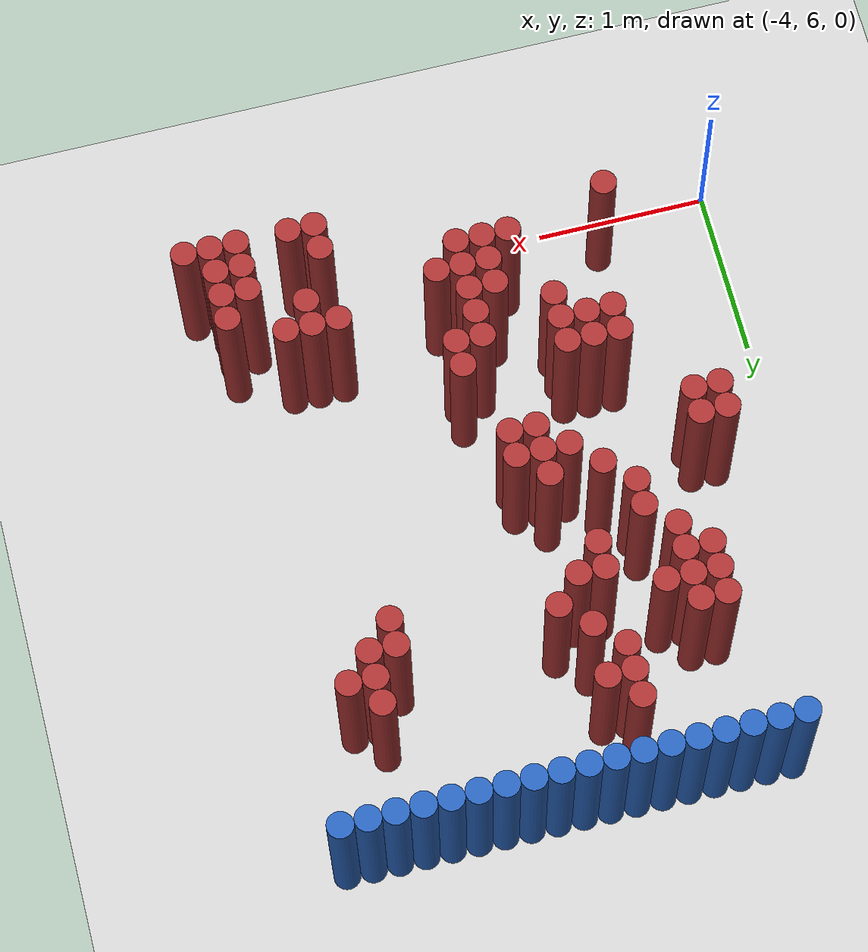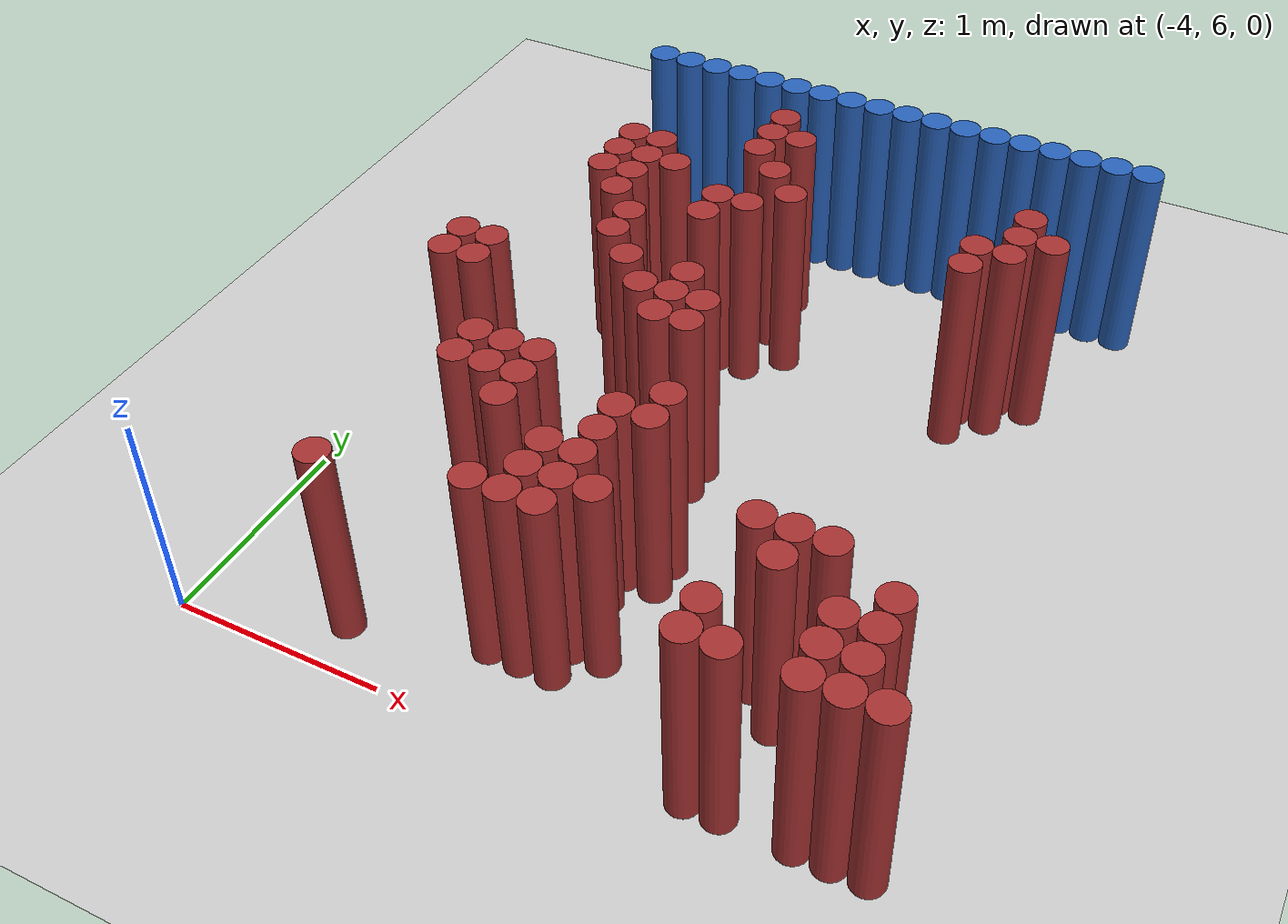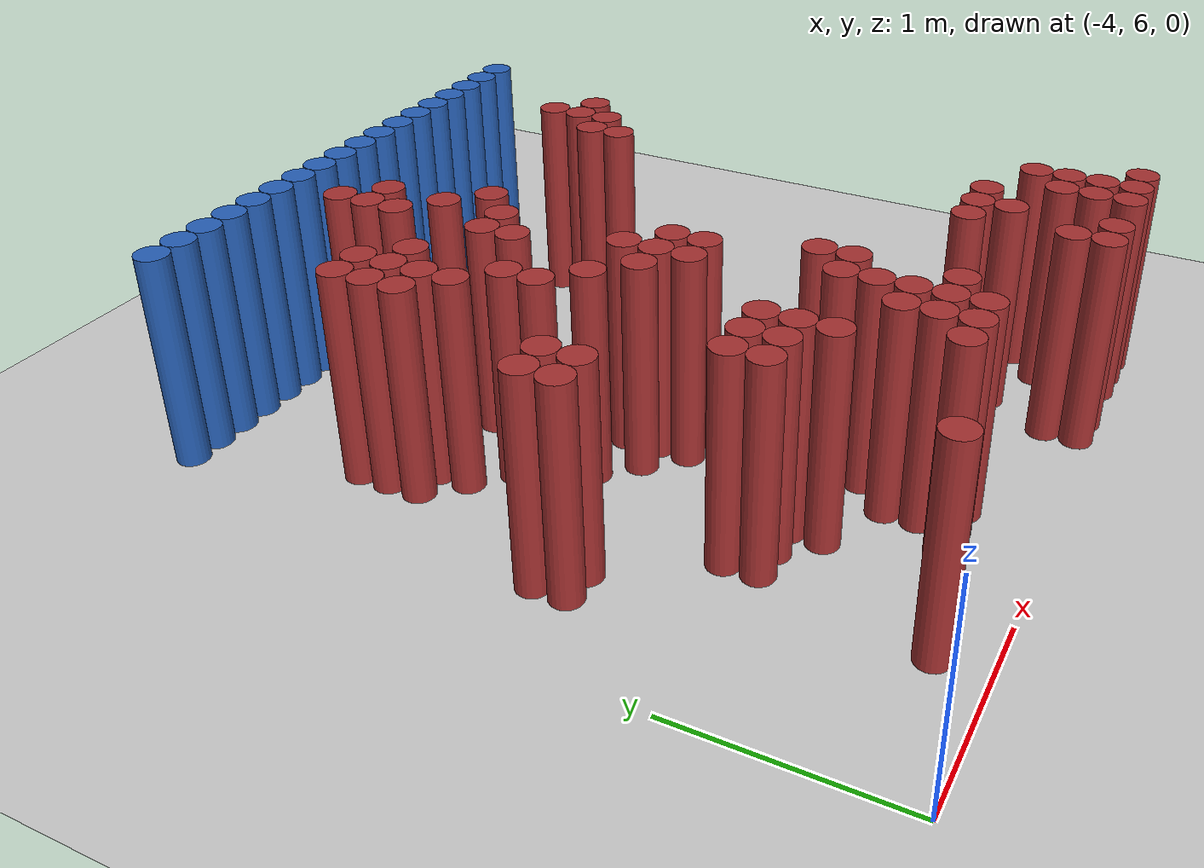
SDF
<sdf version="1.6">
 <world name="barn_world">
  <model name="ground_plane">
   <static>1</static>
   <link name="link">
    <collision name="collision">
     <geometry><plane><normal>0 0 1</normal><size>100 100</size></plane></geometry>
    </collision>
    <visual name="visual">
     <geometry><plane><normal>0 0 1</normal><size>100 100</size></plane></geometry>
     <material>
      <script><uri>file://media/materials/scripts/gazebo.material</uri><name>Gazebo/Grey</name></script>
     </material>
    </visual>
   </link>
  </model>
  <model name="unit_cylinder_195">
   <static>1</static>
   <pose>-3.6000 7.5750 0.5 0 0 0</pose>
   <link name="link">
    <collision name="collision">
     <geometry><cylinder><radius>0.075</radius><length>1</length></cylinder></geometry>
    </collision>
    <visual name="visual">
     <geometry><cylinder><radius>0.075</radius><length>1</length></cylinder></geometry>
     <material><ambient>0.648 0.192 0.192 1</ambient><diffuse>0.648 0.192 0.192 1</diffuse></material>
    </visual>
   </link>
  </model>
  <model name="unit_cylinder_196">
   <static>1</static>
   <pose>-3.6000 7.7250 0.5 0 0 0</pose>
   <link name="link">
    <collision name="collision">
     <geometry><cylinder><radius>0.075</radius><length>1</length></cylinder></geometry>
    </collision>
    <visual name="visual">
     <geometry><cylinder><radius>0.075</radius><length>1</length></cylinder></geometry>
     <material><ambient>0.648 0.192 0.192 1</ambient><diffuse>0.648 0.192 0.192 1</diffuse></material>
    </visual>
   </link>
  </model>
  <model name="unit_cylinder_198">
   <static>1</static>
   <pose>-3.4500 7.5750 0.5 0 0 0</pose>
   <link name="link">
    <collision name="collision">
     <geometry><cylinder><radius>0.075</radius><length>1</length></cylinder></geometry>
    </collision>
    <visual name="visual">
     <geometry><cylinder><radius>0.075</radius><length>1</length></cylinder></geometry>
     <material><ambient>0.648 0.192 0.192 1</ambient><diffuse>0.648 0.192 0.192 1</diffuse></material>
    </visual>
   </link>
  </model>
  <model name="unit_cylinder_199">
   <static>1</static>
   <pose>-3.4500 7.7250 0.5 0 0 0</pose>
   <link name="link">
    <collision name="collision">
     <geometry><cylinder><radius>0.075</radius><length>1</length></cylinder></geometry>
    </collision>
    <visual name="visual">
     <geometry><cylinder><radius>0.075</radius><length>1</length></cylinder></geometry>
     <material><ambient>0.648 0.192 0.192 1</ambient><diffuse>0.648 0.192 0.192 1</diffuse></material>
    </visual>
   </link>
  </model>
  <model name="unit_cylinder_202">
   <static>1</static>
   <pose>-3.3000 6.2250 0.5 0 0 0</pose>
   <link name="link">
    <collision name="collision">
     <geometry><cylinder><radius>0.075</radius><length>1</length></cylinder></geometry>
    </collision>
    <visual name="visual">
     <geometry><cylinder><radius>0.075</radius><length>1</length></cylinder></geometry>
     <material><ambient>0.648 0.192 0.192 1</ambient><diffuse>0.648 0.192 0.192 1</diffuse></material>
    </visual>
   </link>
  </model>
  <model name="unit_cylinder_203">
   <static>1</static>
   <pose>-3.3000 8.4750 0.5 0 0 0</pose>
   <link name="link">
    <collision name="collision">
     <geometry><cylinder><radius>0.075</radius><length>1</length></cylinder></geometry>
    </collision>
    <visual name="visual">
     <geometry><cylinder><radius>0.075</radius><length>1</length></cylinder></geometry>
     <material><ambient>0.648 0.192 0.192 1</ambient><diffuse>0.648 0.192 0.192 1</diffuse></material>
    </visual>
   </link>
  </model>
  <model name="unit_cylinder_204">
   <static>1</static>
   <pose>-3.3000 8.6250 0.5 0 0 0</pose>
   <link name="link">
    <collision name="collision">
     <geometry><cylinder><radius>0.075</radius><length>1</length></cylinder></geometry>
    </collision>
    <visual name="visual">
     <geometry><cylinder><radius>0.075</radius><length>1</length></cylinder></geometry>
     <material><ambient>0.648 0.192 0.192 1</ambient><diffuse>0.648 0.192 0.192 1</diffuse></material>
    </visual>
   </link>
  </model>
  <model name="unit_cylinder_205">
   <static>1</static>
   <pose>-3.3000 8.7750 0.5 0 0 0</pose>
   <link name="link">
    <collision name="collision">
     <geometry><cylinder><radius>0.075</radius><length>1</length></cylinder></geometry>
    </collision>
    <visual name="visual">
     <geometry><cylinder><radius>0.075</radius><length>1</length></cylinder></geometry>
     <material><ambient>0.648 0.192 0.192 1</ambient><diffuse>0.648 0.192 0.192 1</diffuse></material>
    </visual>
   </link>
  </model>
  <model name="unit_cylinder_208">
   <static>1</static>
   <pose>-3.1500 6.9750 0.5 0 0 0</pose>
   <link name="link">
    <collision name="collision">
     <geometry><cylinder><radius>0.075</radius><length>1</length></cylinder></geometry>
    </collision>
    <visual name="visual">
     <geometry><cylinder><radius>0.075</radius><length>1</length></cylinder></geometry>
     <material><ambient>0.648 0.192 0.192 1</ambient><diffuse>0.648 0.192 0.192 1</diffuse></material>
    </visual>
   </link>
  </model>
  <model name="unit_cylinder_209">
   <static>1</static>
   <pose>-3.1500 7.1250 0.5 0 0 0</pose>
   <link name="link">
    <collision name="collision">
     <geometry><cylinder><radius>0.075</radius><length>1</length></cylinder></geometry>
    </collision>
    <visual name="visual">
     <geometry><cylinder><radius>0.075</radius><length>1</length></cylinder></geometry>
     <material><ambient>0.648 0.192 0.192 1</ambient><diffuse>0.648 0.192 0.192 1</diffuse></material>
    </visual>
   </link>
  </model>
  <model name="unit_cylinder_210">
   <static>1</static>
   <pose>-3.1500 8.3250 0.5 0 0 0</pose>
   <link name="link">
    <collision name="collision">
     <geometry><cylinder><radius>0.075</radius><length>1</length></cylinder></geometry>
    </collision>
    <visual name="visual">
     <geometry><cylinder><radius>0.075</radius><length>1</length></cylinder></geometry>
     <material><ambient>0.648 0.192 0.192 1</ambient><diffuse>0.648 0.192 0.192 1</diffuse></material>
    </visual>
   </link>
  </model>
  <model name="unit_cylinder_211">
   <static>1</static>
   <pose>-3.1500 8.4750 0.5 0 0 0</pose>
   <link name="link">
    <collision name="collision">
     <geometry><cylinder><radius>0.075</radius><length>1</length></cylinder></geometry>
    </collision>
    <visual name="visual">
     <geometry><cylinder><radius>0.075</radius><length>1</length></cylinder></geometry>
     <material><ambient>0.648 0.192 0.192 1</ambient><diffuse>0.648 0.192 0.192 1</diffuse></material>
    </visual>
   </link>
  </model>
  <model name="unit_cylinder_212">
   <static>1</static>
   <pose>-3.1500 8.6250 0.5 0 0 0</pose>
   <link name="link">
    <collision name="collision">
     <geometry><cylinder><radius>0.075</radius><length>1</length></cylinder></geometry>
    </collision>
    <visual name="visual">
     <geometry><cylinder><radius>0.075</radius><length>1</length></cylinder></geometry>
     <material><ambient>0.648 0.192 0.192 1</ambient><diffuse>0.648 0.192 0.192 1</diffuse></material>
    </visual>
   </link>
  </model>
  <model name="unit_cylinder_213">
   <static>1</static>
   <pose>-3.1500 8.7750 0.5 0 0 0</pose>
   <link name="link">
    <collision name="collision">
     <geometry><cylinder><radius>0.075</radius><length>1</length></cylinder></geometry>
    </collision>
    <visual name="visual">
     <geometry><cylinder><radius>0.075</radius><length>1</length></cylinder></geometry>
     <material><ambient>0.648 0.192 0.192 1</ambient><diffuse>0.648 0.192 0.192 1</diffuse></material>
    </visual>
   </link>
  </model>
  <model name="unit_cylinder_215">
   <static>1</static>
   <pose>-3.0000 6.9750 0.5 0 0 0</pose>
   <link name="link">
    <collision name="collision">
     <geometry><cylinder><radius>0.075</radius><length>1</length></cylinder></geometry>
    </collision>
    <visual name="visual">
     <geometry><cylinder><radius>0.075</radius><length>1</length></cylinder></geometry>
     <material><ambient>0.648 0.192 0.192 1</ambient><diffuse>0.648 0.192 0.192 1</diffuse></material>
    </visual>
   </link>
  </model>
  <model name="unit_cylinder_216">
   <static>1</static>
   <pose>-3.0000 7.1250 0.5 0 0 0</pose>
   <link name="link">
    <collision name="collision">
     <geometry><cylinder><radius>0.075</radius><length>1</length></cylinder></geometry>
    </collision>
    <visual name="visual">
     <geometry><cylinder><radius>0.075</radius><length>1</length></cylinder></geometry>
     <material><ambient>0.648 0.192 0.192 1</ambient><diffuse>0.648 0.192 0.192 1</diffuse></material>
    </visual>
   </link>
  </model>
  <model name="unit_cylinder_217">
   <static>1</static>
   <pose>-3.0000 8.0250 0.5 0 0 0</pose>
   <link name="link">
    <collision name="collision">
     <geometry><cylinder><radius>0.075</radius><length>1</length></cylinder></geometry>
    </collision>
    <visual name="visual">
     <geometry><cylinder><radius>0.075</radius><length>1</length></cylinder></geometry>
     <material><ambient>0.648 0.192 0.192 1</ambient><diffuse>0.648 0.192 0.192 1</diffuse></material>
    </visual>
   </link>
  </model>
  <model name="unit_cylinder_218">
   <static>1</static>
   <pose>-3.0000 8.1750 0.5 0 0 0</pose>
   <link name="link">
    <collision name="collision">
     <geometry><cylinder><radius>0.075</radius><length>1</length></cylinder></geometry>
    </collision>
    <visual name="visual">
     <geometry><cylinder><radius>0.075</radius><length>1</length></cylinder></geometry>
     <material><ambient>0.648 0.192 0.192 1</ambient><diffuse>0.648 0.192 0.192 1</diffuse></material>
    </visual>
   </link>
  </model>
  <model name="unit_cylinder_219">
   <static>1</static>
   <pose>-3.0000 8.6250 0.5 0 0 0</pose>
   <link name="link">
    <collision name="collision">
     <geometry><cylinder><radius>0.075</radius><length>1</length></cylinder></geometry>
    </collision>
    <visual name="visual">
     <geometry><cylinder><radius>0.075</radius><length>1</length></cylinder></geometry>
     <material><ambient>0.648 0.192 0.192 1</ambient><diffuse>0.648 0.192 0.192 1</diffuse></material>
    </visual>
   </link>
  </model>
  <model name="unit_cylinder_222">
   <static>1</static>
   <pose>-2.8500 6.8250 0.5 0 0 0</pose>
   <link name="link">
    <collision name="collision">
     <geometry><cylinder><radius>0.075</radius><length>1</length></cylinder></geometry>
    </collision>
    <visual name="visual">
     <geometry><cylinder><radius>0.075</radius><length>1</length></cylinder></geometry>
     <material><ambient>0.648 0.192 0.192 1</ambient><diffuse>0.648 0.192 0.192 1</diffuse></material>
    </visual>
   </link>
  </model>
  <model name="unit_cylinder_223">
   <static>1</static>
   <pose>-2.8500 6.9750 0.5 0 0 0</pose>
   <link name="link">
    <collision name="collision">
     <geometry><cylinder><radius>0.075</radius><length>1</length></cylinder></geometry>
    </collision>
    <visual name="visual">
     <geometry><cylinder><radius>0.075</radius><length>1</length></cylinder></geometry>
     <material><ambient>0.648 0.192 0.192 1</ambient><diffuse>0.648 0.192 0.192 1</diffuse></material>
    </visual>
   </link>
  </model>
  <model name="unit_cylinder_224">
   <static>1</static>
   <pose>-2.8500 7.1250 0.5 0 0 0</pose>
   <link name="link">
    <collision name="collision">
     <geometry><cylinder><radius>0.075</radius><length>1</length></cylinder></geometry>
    </collision>
    <visual name="visual">
     <geometry><cylinder><radius>0.075</radius><length>1</length></cylinder></geometry>
     <material><ambient>0.648 0.192 0.192 1</ambient><diffuse>0.648 0.192 0.192 1</diffuse></material>
    </visual>
   </link>
  </model>
  <model name="unit_cylinder_225">
   <static>1</static>
   <pose>-2.8500 7.8750 0.5 0 0 0</pose>
   <link name="link">
    <collision name="collision">
     <geometry><cylinder><radius>0.075</radius><length>1</length></cylinder></geometry>
    </collision>
    <visual name="visual">
     <geometry><cylinder><radius>0.075</radius><length>1</length></cylinder></geometry>
     <material><ambient>0.648 0.192 0.192 1</ambient><diffuse>0.648 0.192 0.192 1</diffuse></material>
    </visual>
   </link>
  </model>
  <model name="unit_cylinder_227">
   <static>1</static>
   <pose>-2.7000 6.3750 0.5 0 0 0</pose>
   <link name="link">
    <collision name="collision">
     <geometry><cylinder><radius>0.075</radius><length>1</length></cylinder></geometry>
    </collision>
    <visual name="visual">
     <geometry><cylinder><radius>0.075</radius><length>1</length></cylinder></geometry>
     <material><ambient>0.648 0.192 0.192 1</ambient><diffuse>0.648 0.192 0.192 1</diffuse></material>
    </visual>
   </link>
  </model>
  <model name="unit_cylinder_228">
   <static>1</static>
   <pose>-2.7000 7.7250 0.5 0 0 0</pose>
   <link name="link">
    <collision name="collision">
     <geometry><cylinder><radius>0.075</radius><length>1</length></cylinder></geometry>
    </collision>
    <visual name="visual">
     <geometry><cylinder><radius>0.075</radius><length>1</length></cylinder></geometry>
     <material><ambient>0.648 0.192 0.192 1</ambient><diffuse>0.648 0.192 0.192 1</diffuse></material>
    </visual>
   </link>
  </model>
  <model name="unit_cylinder_229">
   <static>1</static>
   <pose>-2.7000 8.3250 0.5 0 0 0</pose>
   <link name="link">
    <collision name="collision">
     <geometry><cylinder><radius>0.075</radius><length>1</length></cylinder></geometry>
    </collision>
    <visual name="visual">
     <geometry><cylinder><radius>0.075</radius><length>1</length></cylinder></geometry>
     <material><ambient>0.648 0.192 0.192 1</ambient><diffuse>0.648 0.192 0.192 1</diffuse></material>
    </visual>
   </link>
  </model>
  <model name="unit_cylinder_230">
   <static>1</static>
   <pose>-2.7000 8.4750 0.5 0 0 0</pose>
   <link name="link">
    <collision name="collision">
     <geometry><cylinder><radius>0.075</radius><length>1</length></cylinder></geometry>
    </collision>
    <visual name="visual">
     <geometry><cylinder><radius>0.075</radius><length>1</length></cylinder></geometry>
     <material><ambient>0.648 0.192 0.192 1</ambient><diffuse>0.648 0.192 0.192 1</diffuse></material>
    </visual>
   </link>
  </model>
  <model name="unit_cylinder_231">
   <static>1</static>
   <pose>-2.7000 8.9250 0.5 0 0 0</pose>
   <link name="link">
    <collision name="collision">
     <geometry><cylinder><radius>0.075</radius><length>1</length></cylinder></geometry>
    </collision>
    <visual name="visual">
     <geometry><cylinder><radius>0.075</radius><length>1</length></cylinder></geometry>
     <material><ambient>0.648 0.192 0.192 1</ambient><diffuse>0.648 0.192 0.192 1</diffuse></material>
    </visual>
   </link>
  </model>
  <model name="unit_cylinder_232">
   <static>1</static>
   <pose>-2.7000 9.0750 0.5 0 0 0</pose>
   <link name="link">
    <collision name="collision">
     <geometry><cylinder><radius>0.075</radius><length>1</length></cylinder></geometry>
    </collision>
    <visual name="visual">
     <geometry><cylinder><radius>0.075</radius><length>1</length></cylinder></geometry>
     <material><ambient>0.648 0.192 0.192 1</ambient><diffuse>0.648 0.192 0.192 1</diffuse></material>
    </visual>
   </link>
  </model>
  <model name="unit_cylinder_233">
   <static>1</static>
   <pose>-2.7000 9.2250 0.5 0 0 0</pose>
   <link name="link">
    <collision name="collision">
     <geometry><cylinder><radius>0.075</radius><length>1</length></cylinder></geometry>
    </collision>
    <visual name="visual">
     <geometry><cylinder><radius>0.075</radius><length>1</length></cylinder></geometry>
     <material><ambient>0.648 0.192 0.192 1</ambient><diffuse>0.648 0.192 0.192 1</diffuse></material>
    </visual>
   </link>
  </model>
  <model name="unit_cylinder_234">
   <static>1</static>
   <pose>-2.5500 6.3750 0.5 0 0 0</pose>
   <link name="link">
    <collision name="collision">
     <geometry><cylinder><radius>0.075</radius><length>1</length></cylinder></geometry>
    </collision>
    <visual name="visual">
     <geometry><cylinder><radius>0.075</radius><length>1</length></cylinder></geometry>
     <material><ambient>0.648 0.192 0.192 1</ambient><diffuse>0.648 0.192 0.192 1</diffuse></material>
    </visual>
   </link>
  </model>
  <model name="unit_cylinder_235">
   <static>1</static>
   <pose>-2.5500 6.5250 0.5 0 0 0</pose>
   <link name="link">
    <collision name="collision">
     <geometry><cylinder><radius>0.075</radius><length>1</length></cylinder></geometry>
    </collision>
    <visual name="visual">
     <geometry><cylinder><radius>0.075</radius><length>1</length></cylinder></geometry>
     <material><ambient>0.648 0.192 0.192 1</ambient><diffuse>0.648 0.192 0.192 1</diffuse></material>
    </visual>
   </link>
  </model>
  <model name="unit_cylinder_236">
   <static>1</static>
   <pose>-2.5500 6.6750 0.5 0 0 0</pose>
   <link name="link">
    <collision name="collision">
     <geometry><cylinder><radius>0.075</radius><length>1</length></cylinder></geometry>
    </collision>
    <visual name="visual">
     <geometry><cylinder><radius>0.075</radius><length>1</length></cylinder></geometry>
     <material><ambient>0.648 0.192 0.192 1</ambient><diffuse>0.648 0.192 0.192 1</diffuse></material>
    </visual>
   </link>
  </model>
  <model name="unit_cylinder_237">
   <static>1</static>
   <pose>-2.5500 7.5750 0.5 0 0 0</pose>
   <link name="link">
    <collision name="collision">
     <geometry><cylinder><radius>0.075</radius><length>1</length></cylinder></geometry>
    </collision>
    <visual name="visual">
     <geometry><cylinder><radius>0.075</radius><length>1</length></cylinder></geometry>
     <material><ambient>0.648 0.192 0.192 1</ambient><diffuse>0.648 0.192 0.192 1</diffuse></material>
    </visual>
   </link>
  </model>
  <model name="unit_cylinder_238">
   <static>1</static>
   <pose>-2.5500 7.7250 0.5 0 0 0</pose>
   <link name="link">
    <collision name="collision">
     <geometry><cylinder><radius>0.075</radius><length>1</length></cylinder></geometry>
    </collision>
    <visual name="visual">
     <geometry><cylinder><radius>0.075</radius><length>1</length></cylinder></geometry>
     <material><ambient>0.648 0.192 0.192 1</ambient><diffuse>0.648 0.192 0.192 1</diffuse></material>
    </visual>
   </link>
  </model>
  <model name="unit_cylinder_239">
   <static>1</static>
   <pose>-2.5500 7.8750 0.5 0 0 0</pose>
   <link name="link">
    <collision name="collision">
     <geometry><cylinder><radius>0.075</radius><length>1</length></cylinder></geometry>
    </collision>
    <visual name="visual">
     <geometry><cylinder><radius>0.075</radius><length>1</length></cylinder></geometry>
     <material><ambient>0.648 0.192 0.192 1</ambient><diffuse>0.648 0.192 0.192 1</diffuse></material>
    </visual>
   </link>
  </model>
  <model name="unit_cylinder_240">
   <static>1</static>
   <pose>-2.5500 8.4750 0.5 0 0 0</pose>
   <link name="link">
    <collision name="collision">
     <geometry><cylinder><radius>0.075</radius><length>1</length></cylinder></geometry>
    </collision>
    <visual name="visual">
     <geometry><cylinder><radius>0.075</radius><length>1</length></cylinder></geometry>
     <material><ambient>0.648 0.192 0.192 1</ambient><diffuse>0.648 0.192 0.192 1</diffuse></material>
    </visual>
   </link>
  </model>
  <model name="unit_cylinder_241">
   <static>1</static>
   <pose>-2.5500 8.7750 0.5 0 0 0</pose>
   <link name="link">
    <collision name="collision">
     <geometry><cylinder><radius>0.075</radius><length>1</length></cylinder></geometry>
    </collision>
    <visual name="visual">
     <geometry><cylinder><radius>0.075</radius><length>1</length></cylinder></geometry>
     <material><ambient>0.648 0.192 0.192 1</ambient><diffuse>0.648 0.192 0.192 1</diffuse></material>
    </visual>
   </link>
  </model>
  <model name="unit_cylinder_242">
   <static>1</static>
   <pose>-2.5500 9.0750 0.5 0 0 0</pose>
   <link name="link">
    <collision name="collision">
     <geometry><cylinder><radius>0.075</radius><length>1</length></cylinder></geometry>
    </collision>
    <visual name="visual">
     <geometry><cylinder><radius>0.075</radius><length>1</length></cylinder></geometry>
     <material><ambient>0.648 0.192 0.192 1</ambient><diffuse>0.648 0.192 0.192 1</diffuse></material>
    </visual>
   </link>
  </model>
  <model name="unit_cylinder_243">
   <static>1</static>
   <pose>-2.4000 6.3750 0.5 0 0 0</pose>
   <link name="link">
    <collision name="collision">
     <geometry><cylinder><radius>0.075</radius><length>1</length></cylinder></geometry>
    </collision>
    <visual name="visual">
     <geometry><cylinder><radius>0.075</radius><length>1</length></cylinder></geometry>
     <material><ambient>0.648 0.192 0.192 1</ambient><diffuse>0.648 0.192 0.192 1</diffuse></material>
    </visual>
   </link>
  </model>
  <model name="unit_cylinder_244">
   <static>1</static>
   <pose>-2.4000 6.5250 0.5 0 0 0</pose>
   <link name="link">
    <collision name="collision">
     <geometry><cylinder><radius>0.075</radius><length>1</length></cylinder></geometry>
    </collision>
    <visual name="visual">
     <geometry><cylinder><radius>0.075</radius><length>1</length></cylinder></geometry>
     <material><ambient>0.648 0.192 0.192 1</ambient><diffuse>0.648 0.192 0.192 1</diffuse></material>
    </visual>
   </link>
  </model>
  <model name="unit_cylinder_245">
   <static>1</static>
   <pose>-2.4000 6.6750 0.5 0 0 0</pose>
   <link name="link">
    <collision name="collision">
     <geometry><cylinder><radius>0.075</radius><length>1</length></cylinder></geometry>
    </collision>
    <visual name="visual">
     <geometry><cylinder><radius>0.075</radius><length>1</length></cylinder></geometry>
     <material><ambient>0.648 0.192 0.192 1</ambient><diffuse>0.648 0.192 0.192 1</diffuse></material>
    </visual>
   </link>
  </model>
  <model name="unit_cylinder_246">
   <static>1</static>
   <pose>-2.4000 6.8250 0.5 0 0 0</pose>
   <link name="link">
    <collision name="collision">
     <geometry><cylinder><radius>0.075</radius><length>1</length></cylinder></geometry>
    </collision>
    <visual name="visual">
     <geometry><cylinder><radius>0.075</radius><length>1</length></cylinder></geometry>
     <material><ambient>0.648 0.192 0.192 1</ambient><diffuse>0.648 0.192 0.192 1</diffuse></material>
    </visual>
   </link>
  </model>
  <model name="unit_cylinder_247">
   <static>1</static>
   <pose>-2.4000 6.9750 0.5 0 0 0</pose>
   <link name="link">
    <collision name="collision">
     <geometry><cylinder><radius>0.075</radius><length>1</length></cylinder></geometry>
    </collision>
    <visual name="visual">
     <geometry><cylinder><radius>0.075</radius><length>1</length></cylinder></geometry>
     <material><ambient>0.648 0.192 0.192 1</ambient><diffuse>0.648 0.192 0.192 1</diffuse></material>
    </visual>
   </link>
  </model>
  <model name="unit_cylinder_248">
   <static>1</static>
   <pose>-2.4000 7.5750 0.5 0 0 0</pose>
   <link name="link">
    <collision name="collision">
     <geometry><cylinder><radius>0.075</radius><length>1</length></cylinder></geometry>
    </collision>
    <visual name="visual">
     <geometry><cylinder><radius>0.075</radius><length>1</length></cylinder></geometry>
     <material><ambient>0.648 0.192 0.192 1</ambient><diffuse>0.648 0.192 0.192 1</diffuse></material>
    </visual>
   </link>
  </model>
  <model name="unit_cylinder_249">
   <static>1</static>
   <pose>-2.4000 7.7250 0.5 0 0 0</pose>
   <link name="link">
    <collision name="collision">
     <geometry><cylinder><radius>0.075</radius><length>1</length></cylinder></geometry>
    </collision>
    <visual name="visual">
     <geometry><cylinder><radius>0.075</radius><length>1</length></cylinder></geometry>
     <material><ambient>0.648 0.192 0.192 1</ambient><diffuse>0.648 0.192 0.192 1</diffuse></material>
    </visual>
   </link>
  </model>
  <model name="unit_cylinder_250">
   <static>1</static>
   <pose>-2.4000 8.6250 0.5 0 0 0</pose>
   <link name="link">
    <collision name="collision">
     <geometry><cylinder><radius>0.075</radius><length>1</length></cylinder></geometry>
    </collision>
    <visual name="visual">
     <geometry><cylinder><radius>0.075</radius><length>1</length></cylinder></geometry>
     <material><ambient>0.648 0.192 0.192 1</ambient><diffuse>0.648 0.192 0.192 1</diffuse></material>
    </visual>
   </link>
  </model>
  <model name="unit_cylinder_251">
   <static>1</static>
   <pose>-2.2500 6.5250 0.5 0 0 0</pose>
   <link name="link">
    <collision name="collision">
     <geometry><cylinder><radius>0.075</radius><length>1</length></cylinder></geometry>
    </collision>
    <visual name="visual">
     <geometry><cylinder><radius>0.075</radius><length>1</length></cylinder></geometry>
     <material><ambient>0.648 0.192 0.192 1</ambient><diffuse>0.648 0.192 0.192 1</diffuse></material>
    </visual>
   </link>
  </model>
  <model name="unit_cylinder_252">
   <static>1</static>
   <pose>-2.2500 6.9750 0.5 0 0 0</pose>
   <link name="link">
    <collision name="collision">
     <geometry><cylinder><radius>0.075</radius><length>1</length></cylinder></geometry>
    </collision>
    <visual name="visual">
     <geometry><cylinder><radius>0.075</radius><length>1</length></cylinder></geometry>
     <material><ambient>0.648 0.192 0.192 1</ambient><diffuse>0.648 0.192 0.192 1</diffuse></material>
    </visual>
   </link>
  </model>
  <model name="unit_cylinder_253">
   <static>1</static>
   <pose>-2.2500 7.1250 0.5 0 0 0</pose>
   <link name="link">
    <collision name="collision">
     <geometry><cylinder><radius>0.075</radius><length>1</length></cylinder></geometry>
    </collision>
    <visual name="visual">
     <geometry><cylinder><radius>0.075</radius><length>1</length></cylinder></geometry>
     <material><ambient>0.648 0.192 0.192 1</ambient><diffuse>0.648 0.192 0.192 1</diffuse></material>
    </visual>
   </link>
  </model>
  <model name="unit_cylinder_255">
   <static>1</static>
   <pose>-1.6500 6.0750 0.5 0 0 0</pose>
   <link name="link">
    <collision name="collision">
     <geometry><cylinder><radius>0.075</radius><length>1</length></cylinder></geometry>
    </collision>
    <visual name="visual">
     <geometry><cylinder><radius>0.075</radius><length>1</length></cylinder></geometry>
     <material><ambient>0.648 0.192 0.192 1</ambient><diffuse>0.648 0.192 0.192 1</diffuse></material>
    </visual>
   </link>
  </model>
  <model name="unit_cylinder_256">
   <static>1</static>
   <pose>-1.6500 6.2250 0.5 0 0 0</pose>
   <link name="link">
    <collision name="collision">
     <geometry><cylinder><radius>0.075</radius><length>1</length></cylinder></geometry>
    </collision>
    <visual name="visual">
     <geometry><cylinder><radius>0.075</radius><length>1</length></cylinder></geometry>
     <material><ambient>0.648 0.192 0.192 1</ambient><diffuse>0.648 0.192 0.192 1</diffuse></material>
    </visual>
   </link>
  </model>
  <model name="unit_cylinder_257">
   <static>1</static>
   <pose>-1.6500 6.6750 0.5 0 0 0</pose>
   <link name="link">
    <collision name="collision">
     <geometry><cylinder><radius>0.075</radius><length>1</length></cylinder></geometry>
    </collision>
    <visual name="visual">
     <geometry><cylinder><radius>0.075</radius><length>1</length></cylinder></geometry>
     <material><ambient>0.648 0.192 0.192 1</ambient><diffuse>0.648 0.192 0.192 1</diffuse></material>
    </visual>
   </link>
  </model>
  <model name="unit_cylinder_258">
   <static>1</static>
   <pose>-1.5000 6.0750 0.5 0 0 0</pose>
   <link name="link">
    <collision name="collision">
     <geometry><cylinder><radius>0.075</radius><length>1</length></cylinder></geometry>
    </collision>
    <visual name="visual">
     <geometry><cylinder><radius>0.075</radius><length>1</length></cylinder></geometry>
     <material><ambient>0.648 0.192 0.192 1</ambient><diffuse>0.648 0.192 0.192 1</diffuse></material>
    </visual>
   </link>
  </model>
  <model name="unit_cylinder_259">
   <static>1</static>
   <pose>-1.5000 6.5250 0.5 0 0 0</pose>
   <link name="link">
    <collision name="collision">
     <geometry><cylinder><radius>0.075</radius><length>1</length></cylinder></geometry>
    </collision>
    <visual name="visual">
     <geometry><cylinder><radius>0.075</radius><length>1</length></cylinder></geometry>
     <material><ambient>0.648 0.192 0.192 1</ambient><diffuse>0.648 0.192 0.192 1</diffuse></material>
    </visual>
   </link>
  </model>
  <model name="unit_cylinder_260">
   <static>1</static>
   <pose>-1.5000 6.6750 0.5 0 0 0</pose>
   <link name="link">
    <collision name="collision">
     <geometry><cylinder><radius>0.075</radius><length>1</length></cylinder></geometry>
    </collision>
    <visual name="visual">
     <geometry><cylinder><radius>0.075</radius><length>1</length></cylinder></geometry>
     <material><ambient>0.648 0.192 0.192 1</ambient><diffuse>0.648 0.192 0.192 1</diffuse></material>
    </visual>
   </link>
  </model>
  <model name="unit_cylinder_261">
   <static>1</static>
   <pose>-1.5000 8.4750 0.5 0 0 0</pose>
   <link name="link">
    <collision name="collision">
     <geometry><cylinder><radius>0.075</radius><length>1</length></cylinder></geometry>
    </collision>
    <visual name="visual">
     <geometry><cylinder><radius>0.075</radius><length>1</length></cylinder></geometry>
     <material><ambient>0.648 0.192 0.192 1</ambient><diffuse>0.648 0.192 0.192 1</diffuse></material>
    </visual>
   </link>
  </model>
  <model name="unit_cylinder_262">
   <static>1</static>
   <pose>-1.5000 8.6250 0.5 0 0 0</pose>
   <link name="link">
    <collision name="collision">
     <geometry><cylinder><radius>0.075</radius><length>1</length></cylinder></geometry>
    </collision>
    <visual name="visual">
     <geometry><cylinder><radius>0.075</radius><length>1</length></cylinder></geometry>
     <material><ambient>0.648 0.192 0.192 1</ambient><diffuse>0.648 0.192 0.192 1</diffuse></material>
    </visual>
   </link>
  </model>
  <model name="unit_cylinder_263">
   <static>1</static>
   <pose>-1.3500 6.6750 0.5 0 0 0</pose>
   <link name="link">
    <collision name="collision">
     <geometry><cylinder><radius>0.075</radius><length>1</length></cylinder></geometry>
    </collision>
    <visual name="visual">
     <geometry><cylinder><radius>0.075</radius><length>1</length></cylinder></geometry>
     <material><ambient>0.648 0.192 0.192 1</ambient><diffuse>0.648 0.192 0.192 1</diffuse></material>
    </visual>
   </link>
  </model>
  <model name="unit_cylinder_264">
   <static>1</static>
   <pose>-1.3500 8.6250 0.5 0 0 0</pose>
   <link name="link">
    <collision name="collision">
     <geometry><cylinder><radius>0.075</radius><length>1</length></cylinder></geometry>
    </collision>
    <visual name="visual">
     <geometry><cylinder><radius>0.075</radius><length>1</length></cylinder></geometry>
     <material><ambient>0.648 0.192 0.192 1</ambient><diffuse>0.648 0.192 0.192 1</diffuse></material>
    </visual>
   </link>
  </model>
  <model name="unit_cylinder_265">
   <static>1</static>
   <pose>-1.3500 8.7750 0.5 0 0 0</pose>
   <link name="link">
    <collision name="collision">
     <geometry><cylinder><radius>0.075</radius><length>1</length></cylinder></geometry>
    </collision>
    <visual name="visual">
     <geometry><cylinder><radius>0.075</radius><length>1</length></cylinder></geometry>
     <material><ambient>0.648 0.192 0.192 1</ambient><diffuse>0.648 0.192 0.192 1</diffuse></material>
    </visual>
   </link>
  </model>
  <model name="unit_cylinder_266">
   <static>1</static>
   <pose>-1.3500 8.9250 0.5 0 0 0</pose>
   <link name="link">
    <collision name="collision">
     <geometry><cylinder><radius>0.075</radius><length>1</length></cylinder></geometry>
    </collision>
    <visual name="visual">
     <geometry><cylinder><radius>0.075</radius><length>1</length></cylinder></geometry>
     <material><ambient>0.648 0.192 0.192 1</ambient><diffuse>0.648 0.192 0.192 1</diffuse></material>
    </visual>
   </link>
  </model>
  <model name="unit_cylinder_267">
   <static>1</static>
   <pose>-1.2000 6.0750 0.5 0 0 0</pose>
   <link name="link">
    <collision name="collision">
     <geometry><cylinder><radius>0.075</radius><length>1</length></cylinder></geometry>
    </collision>
    <visual name="visual">
     <geometry><cylinder><radius>0.075</radius><length>1</length></cylinder></geometry>
     <material><ambient>0.648 0.192 0.192 1</ambient><diffuse>0.648 0.192 0.192 1</diffuse></material>
    </visual>
   </link>
  </model>
  <model name="unit_cylinder_268">
   <static>1</static>
   <pose>-1.2000 6.2250 0.5 0 0 0</pose>
   <link name="link">
    <collision name="collision">
     <geometry><cylinder><radius>0.075</radius><length>1</length></cylinder></geometry>
    </collision>
    <visual name="visual">
     <geometry><cylinder><radius>0.075</radius><length>1</length></cylinder></geometry>
     <material><ambient>0.648 0.192 0.192 1</ambient><diffuse>0.648 0.192 0.192 1</diffuse></material>
    </visual>
   </link>
  </model>
  <model name="unit_cylinder_269">
   <static>1</static>
   <pose>-1.2000 6.3750 0.5 0 0 0</pose>
   <link name="link">
    <collision name="collision">
     <geometry><cylinder><radius>0.075</radius><length>1</length></cylinder></geometry>
    </collision>
    <visual name="visual">
     <geometry><cylinder><radius>0.075</radius><length>1</length></cylinder></geometry>
     <material><ambient>0.648 0.192 0.192 1</ambient><diffuse>0.648 0.192 0.192 1</diffuse></material>
    </visual>
   </link>
  </model>
  <model name="unit_cylinder_270">
   <static>1</static>
   <pose>-1.2000 8.7750 0.5 0 0 0</pose>
   <link name="link">
    <collision name="collision">
     <geometry><cylinder><radius>0.075</radius><length>1</length></cylinder></geometry>
    </collision>
    <visual name="visual">
     <geometry><cylinder><radius>0.075</radius><length>1</length></cylinder></geometry>
     <material><ambient>0.648 0.192 0.192 1</ambient><diffuse>0.648 0.192 0.192 1</diffuse></material>
    </visual>
   </link>
  </model>
  <model name="unit_cylinder_271">
   <static>1</static>
   <pose>-1.0500 6.0750 0.5 0 0 0</pose>
   <link name="link">
    <collision name="collision">
     <geometry><cylinder><radius>0.075</radius><length>1</length></cylinder></geometry>
    </collision>
    <visual name="visual">
     <geometry><cylinder><radius>0.075</radius><length>1</length></cylinder></geometry>
     <material><ambient>0.648 0.192 0.192 1</ambient><diffuse>0.648 0.192 0.192 1</diffuse></material>
    </visual>
   </link>
  </model>
  <model name="unit_cylinder_272">
   <static>1</static>
   <pose>-1.0500 6.2250 0.5 0 0 0</pose>
   <link name="link">
    <collision name="collision">
     <geometry><cylinder><radius>0.075</radius><length>1</length></cylinder></geometry>
    </collision>
    <visual name="visual">
     <geometry><cylinder><radius>0.075</radius><length>1</length></cylinder></geometry>
     <material><ambient>0.648 0.192 0.192 1</ambient><diffuse>0.648 0.192 0.192 1</diffuse></material>
    </visual>
   </link>
  </model>
  <model name="unit_cylinder_273">
   <static>1</static>
   <pose>-1.0500 6.3750 0.5 0 0 0</pose>
   <link name="link">
    <collision name="collision">
     <geometry><cylinder><radius>0.075</radius><length>1</length></cylinder></geometry>
    </collision>
    <visual name="visual">
     <geometry><cylinder><radius>0.075</radius><length>1</length></cylinder></geometry>
     <material><ambient>0.648 0.192 0.192 1</ambient><diffuse>0.648 0.192 0.192 1</diffuse></material>
    </visual>
   </link>
  </model>
  <model name="unit_cylinder_274">
   <static>1</static>
   <pose>-1.0500 6.5250 0.5 0 0 0</pose>
   <link name="link">
    <collision name="collision">
     <geometry><cylinder><radius>0.075</radius><length>1</length></cylinder></geometry>
    </collision>
    <visual name="visual">
     <geometry><cylinder><radius>0.075</radius><length>1</length></cylinder></geometry>
     <material><ambient>0.648 0.192 0.192 1</ambient><diffuse>0.648 0.192 0.192 1</diffuse></material>
    </visual>
   </link>
  </model>
  <model name="unit_cylinder_277">
   <static>1</static>
   <pose>-0.9000 6.0750 0.5 0 0 0</pose>
   <link name="link">
    <collision name="collision">
     <geometry><cylinder><radius>0.075</radius><length>1</length></cylinder></geometry>
    </collision>
    <visual name="visual">
     <geometry><cylinder><radius>0.075</radius><length>1</length></cylinder></geometry>
     <material><ambient>0.648 0.192 0.192 1</ambient><diffuse>0.648 0.192 0.192 1</diffuse></material>
    </visual>
   </link>
  </model>
  <model name="unit_cylinder_364">
   <static>1</static>
   <pose>-0.9750 9.5250 0.5 0 0 0</pose>
   <link name="link">
    <collision name="collision">
     <geometry><cylinder><radius>0.075</radius><length>1</length></cylinder></geometry>
    </collision>
    <visual name="visual">
     <geometry><cylinder><radius>0.075</radius><length>1</length></cylinder></geometry>
     <material><ambient>0.152 0.379 0.72 1</ambient><diffuse>0.152 0.379 0.72 1</diffuse></material>
    </visual>
   </link>
  </model>
  <model name="unit_cylinder_365">
   <static>1</static>
   <pose>-1.1250 9.5250 0.5 0 0 0</pose>
   <link name="link">
    <collision name="collision">
     <geometry><cylinder><radius>0.075</radius><length>1</length></cylinder></geometry>
    </collision>
    <visual name="visual">
     <geometry><cylinder><radius>0.075</radius><length>1</length></cylinder></geometry>
     <material><ambient>0.152 0.379 0.72 1</ambient><diffuse>0.152 0.379 0.72 1</diffuse></material>
    </visual>
   </link>
  </model>
  <model name="unit_cylinder_366">
   <static>1</static>
   <pose>-1.2750 9.5250 0.5 0 0 0</pose>
   <link name="link">
    <collision name="collision">
     <geometry><cylinder><radius>0.075</radius><length>1</length></cylinder></geometry>
    </collision>
    <visual name="visual">
     <geometry><cylinder><radius>0.075</radius><length>1</length></cylinder></geometry>
     <material><ambient>0.152 0.379 0.72 1</ambient><diffuse>0.152 0.379 0.72 1</diffuse></material>
    </visual>
   </link>
  </model>
  <model name="unit_cylinder_367">
   <static>1</static>
   <pose>-1.4250 9.5250 0.5 0 0 0</pose>
   <link name="link">
    <collision name="collision">
     <geometry><cylinder><radius>0.075</radius><length>1</length></cylinder></geometry>
    </collision>
    <visual name="visual">
     <geometry><cylinder><radius>0.075</radius><length>1</length></cylinder></geometry>
     <material><ambient>0.152 0.379 0.72 1</ambient><diffuse>0.152 0.379 0.72 1</diffuse></material>
    </visual>
   </link>
  </model>
  <model name="unit_cylinder_368">
   <static>1</static>
   <pose>-1.5750 9.5250 0.5 0 0 0</pose>
   <link name="link">
    <collision name="collision">
     <geometry><cylinder><radius>0.075</radius><length>1</length></cylinder></geometry>
    </collision>
    <visual name="visual">
     <geometry><cylinder><radius>0.075</radius><length>1</length></cylinder></geometry>
     <material><ambient>0.152 0.379 0.72 1</ambient><diffuse>0.152 0.379 0.72 1</diffuse></material>
    </visual>
   </link>
  </model>
  <model name="unit_cylinder_369">
   <static>1</static>
   <pose>-1.7250 9.5250 0.5 0 0 0</pose>
   <link name="link">
    <collision name="collision">
     <geometry><cylinder><radius>0.075</radius><length>1</length></cylinder></geometry>
    </collision>
    <visual name="visual">
     <geometry><cylinder><radius>0.075</radius><length>1</length></cylinder></geometry>
     <material><ambient>0.152 0.379 0.72 1</ambient><diffuse>0.152 0.379 0.72 1</diffuse></material>
    </visual>
   </link>
  </model>
  <model name="unit_cylinder_370">
   <static>1</static>
   <pose>-1.8750 9.5250 0.5 0 0 0</pose>
   <link name="link">
    <collision name="collision">
     <geometry><cylinder><radius>0.075</radius><length>1</length></cylinder></geometry>
    </collision>
    <visual name="visual">
     <geometry><cylinder><radius>0.075</radius><length>1</length></cylinder></geometry>
     <material><ambient>0.152 0.379 0.72 1</ambient><diffuse>0.152 0.379 0.72 1</diffuse></material>
    </visual>
   </link>
  </model>
  <model name="unit_cylinder_371">
   <static>1</static>
   <pose>-2.0250 9.5250 0.5 0 0 0</pose>
   <link name="link">
    <collision name="collision">
     <geometry><cylinder><radius>0.075</radius><length>1</length></cylinder></geometry>
    </collision>
    <visual name="visual">
     <geometry><cylinder><radius>0.075</radius><length>1</length></cylinder></geometry>
     <material><ambient>0.152 0.379 0.72 1</ambient><diffuse>0.152 0.379 0.72 1</diffuse></material>
    </visual>
   </link>
  </model>
  <model name="unit_cylinder_372">
   <static>1</static>
   <pose>-2.1750 9.5250 0.5 0 0 0</pose>
   <link name="link">
    <collision name="collision">
     <geometry><cylinder><radius>0.075</radius><length>1</length></cylinder></geometry>
    </collision>
    <visual name="visual">
     <geometry><cylinder><radius>0.075</radius><length>1</length></cylinder></geometry>
     <material><ambient>0.152 0.379 0.72 1</ambient><diffuse>0.152 0.379 0.72 1</diffuse></material>
    </visual>
   </link>
  </model>
  <model name="unit_cylinder_373">
   <static>1</static>
   <pose>-2.3250 9.5250 0.5 0 0 0</pose>
   <link name="link">
    <collision name="collision">
     <geometry><cylinder><radius>0.075</radius><length>1</length></cylinder></geometry>
    </collision>
    <visual name="visual">
     <geometry><cylinder><radius>0.075</radius><length>1</length></cylinder></geometry>
     <material><ambient>0.152 0.379 0.72 1</ambient><diffuse>0.152 0.379 0.72 1</diffuse></material>
    </visual>
   </link>
  </model>
  <model name="unit_cylinder_374">
   <static>1</static>
   <pose>-2.4750 9.5250 0.5 0 0 0</pose>
   <link name="link">
    <collision name="collision">
     <geometry><cylinder><radius>0.075</radius><length>1</length></cylinder></geometry>
    </collision>
    <visual name="visual">
     <geometry><cylinder><radius>0.075</radius><length>1</length></cylinder></geometry>
     <material><ambient>0.152 0.379 0.72 1</ambient><diffuse>0.152 0.379 0.72 1</diffuse></material>
    </visual>
   </link>
  </model>
  <model name="unit_cylinder_375">
   <static>1</static>
   <pose>-2.6250 9.5250 0.5 0 0 0</pose>
   <link name="link">
    <collision name="collision">
     <geometry><cylinder><radius>0.075</radius><length>1</length></cylinder></geometry>
    </collision>
    <visual name="visual">
     <geometry><cylinder><radius>0.075</radius><length>1</length></cylinder></geometry>
     <material><ambient>0.152 0.379 0.72 1</ambient><diffuse>0.152 0.379 0.72 1</diffuse></material>
    </visual>
   </link>
  </model>
  <model name="unit_cylinder_376">
   <static>1</static>
   <pose>-2.7750 9.5250 0.5 0 0 0</pose>
   <link name="link">
    <collision name="collision">
     <geometry><cylinder><radius>0.075</radius><length>1</length></cylinder></geometry>
    </collision>
    <visual name="visual">
     <geometry><cylinder><radius>0.075</radius><length>1</length></cylinder></geometry>
     <material><ambient>0.152 0.379 0.72 1</ambient><diffuse>0.152 0.379 0.72 1</diffuse></material>
    </visual>
   </link>
  </model>
  <model name="unit_cylinder_377">
   <static>1</static>
   <pose>-2.9250 9.5250 0.5 0 0 0</pose>
   <link name="link">
    <collision name="collision">
     <geometry><cylinder><radius>0.075</radius><length>1</length></cylinder></geometry>
    </collision>
    <visual name="visual">
     <geometry><cylinder><radius>0.075</radius><length>1</length></cylinder></geometry>
     <material><ambient>0.152 0.379 0.72 1</ambient><diffuse>0.152 0.379 0.72 1</diffuse></material>
    </visual>
   </link>
  </model>
  <model name="unit_cylinder_378">
   <static>1</static>
   <pose>-3.0750 9.5250 0.5 0 0 0</pose>
   <link name="link">
    <collision name="collision">
     <geometry><cylinder><radius>0.075</radius><length>1</length></cylinder></geometry>
    </collision>
    <visual name="visual">
     <geometry><cylinder><radius>0.075</radius><length>1</length></cylinder></geometry>
     <material><ambient>0.152 0.379 0.72 1</ambient><diffuse>0.152 0.379 0.72 1</diffuse></material>
    </visual>
   </link>
  </model>
  <model name="unit_cylinder_379">
   <static>1</static>
   <pose>-3.2250 9.5250 0.5 0 0 0</pose>
   <link name="link">
    <collision name="collision">
     <geometry><cylinder><radius>0.075</radius><length>1</length></cylinder></geometry>
    </collision>
    <visual name="visual">
     <geometry><cylinder><radius>0.075</radius><length>1</length></cylinder></geometry>
     <material><ambient>0.152 0.379 0.72 1</ambient><diffuse>0.152 0.379 0.72 1</diffuse></material>
    </visual>
   </link>
  </model>
  <model name="unit_cylinder_380">
   <static>1</static>
   <pose>-3.3750 9.5250 0.5 0 0 0</pose>
   <link name="link">
    <collision name="collision">
     <geometry><cylinder><radius>0.075</radius><length>1</length></cylinder></geometry>
    </collision>
    <visual name="visual">
     <geometry><cylinder><radius>0.075</radius><length>1</length></cylinder></geometry>
     <material><ambient>0.152 0.379 0.72 1</ambient><diffuse>0.152 0.379 0.72 1</diffuse></material>
    </visual>
   </link>
  </model>
  <model name="unit_cylinder_381">
   <static>1</static>
   <pose>-3.5250 9.5250 0.5 0 0 0</pose>
   <link name="link">
    <collision name="collision">
     <geometry><cylinder><radius>0.075</radius><length>1</length></cylinder></geometry>
    </collision>
    <visual name="visual">
     <geometry><cylinder><radius>0.075</radius><length>1</length></cylinder></geometry>
     <material><ambient>0.152 0.379 0.72 1</ambient><diffuse>0.152 0.379 0.72 1</diffuse></material>
    </visual>
   </link>
  </model>
 </world>
</sdf>
